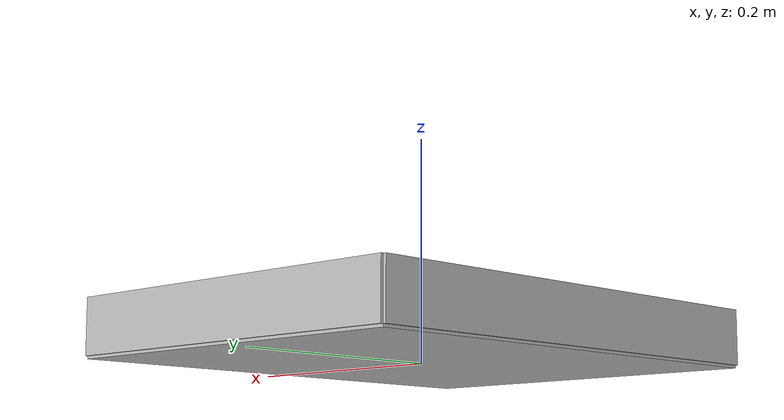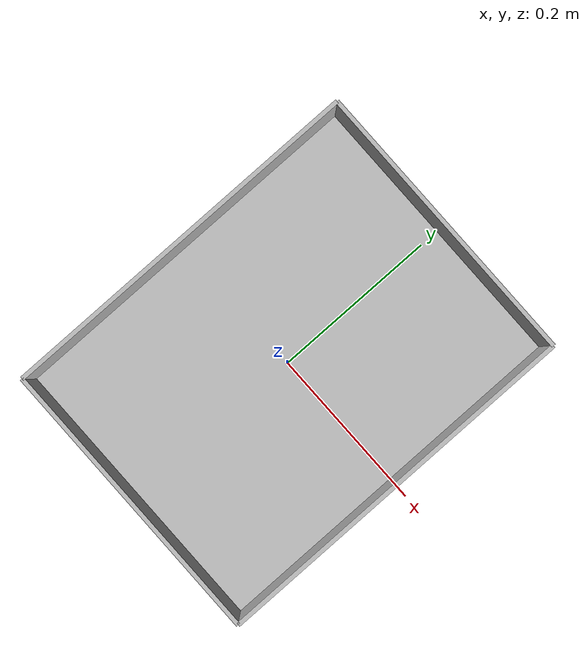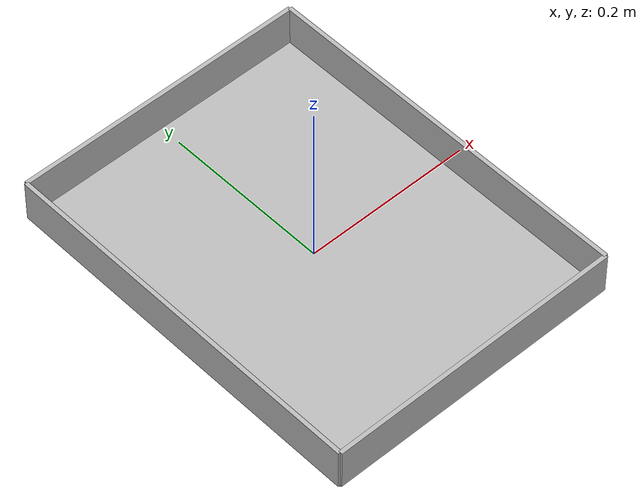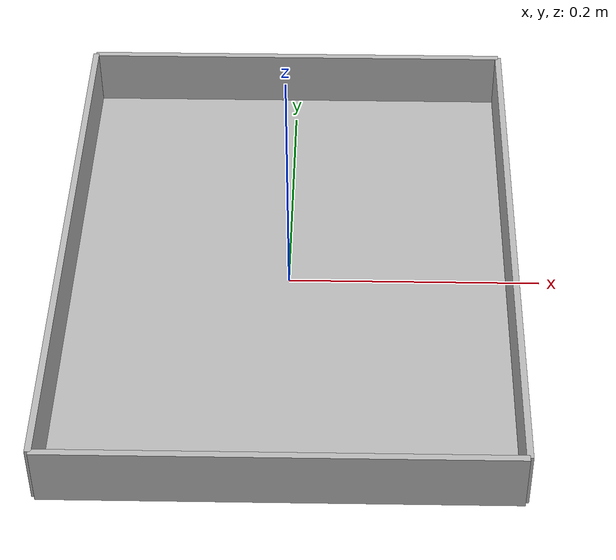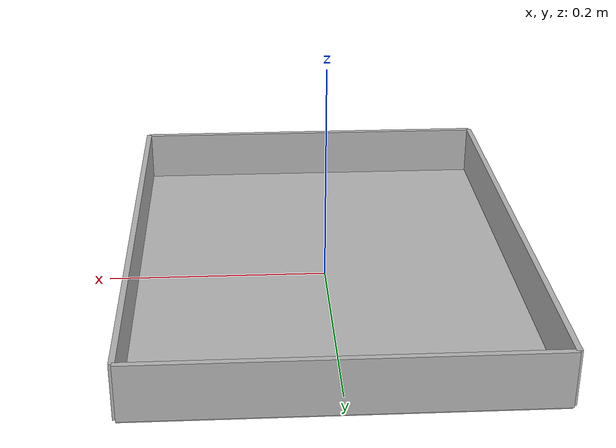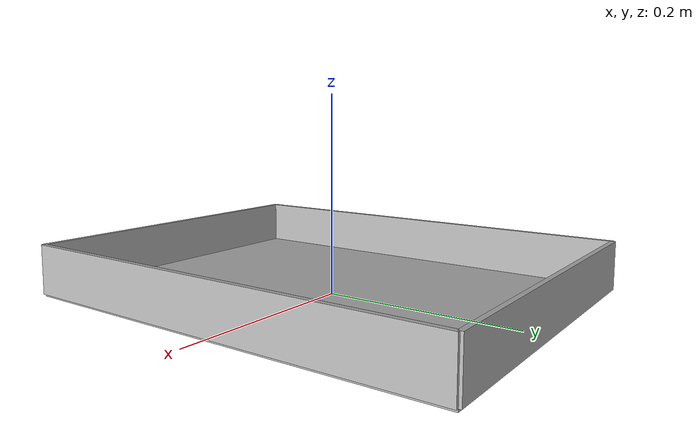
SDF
<?xml version="1.0"?>
<sdf version="1.7">
  <model name="storage_b_basket">
    <static>true</static>

    <!-- Bottom -->
    <link name="bottom">
      <pose>0 0 0.002500 0 0 0</pose>

      <visual name="bottom_visual">
        <geometry>
          <box>
            <size>0.35 0.45 0.005</size>
          </box>
        </geometry>
        <material>
          <script>
            <uri>model://storage_b_basket/materials/scripts</uri>
            <uri>model://storage_b_basket/materials/textures</uri>
            <name>Label/Storage_B</name>
          </script>
        </material>
      </visual>

      <collision name="bottom_collision">
        <geometry>
          <box>
            <size>0.35 0.45 0.005</size>
          </box>
        </geometry>
      </collision>
    </link>

    <!-- Front wall (+y) -->
    <link name="wall_front">
      <pose>0 0.225000 0.027500 0 0 0</pose>
      <visual name="front_visual">
        <geometry><box><size>0.35 0.005 0.05</size></box></geometry>
      </visual>
      <collision name="front_collision">
        <geometry><box><size>0.35 0.005 0.05</size></box></geometry>
      </collision>
    </link>

    <!-- Back wall (-y) -->
    <link name="wall_back">
      <pose>0 -0.225000 0.027500 0 0 0</pose>
      <visual name="back_visual">
        <geometry><box><size>0.35 0.005 0.05</size></box></geometry>
      </visual>
      <collision name="back_collision">
        <geometry><box><size>0.35 0.005 0.05</size></box></geometry>
      </collision>
    </link>

    <!-- Left wall (+x) -->
    <link name="wall_left">
      <pose>0.175000 0 0.027500 0 0 0</pose>
      <visual name="left_visual">
        <geometry><box><size>0.005 0.45 0.05</size></box></geometry>
      </visual>
      <collision name="left_collision">
        <geometry><box><size>0.005 0.45 0.05</size></box></geometry>
      </collision>
    </link>

    <!-- Right wall (-x) -->
    <link name="wall_right">
      <pose>-0.175000 0 0.027500 0 0 0</pose>
      <visual name="right_visual">
        <geometry><box><size>0.005 0.45 0.05</size></box></geometry>
      </visual>
      <collision name="right_collision">
        <geometry><box><size>0.005 0.45 0.05</size></box></geometry>
      </collision>
    </link>

  </model>
</sdf>
